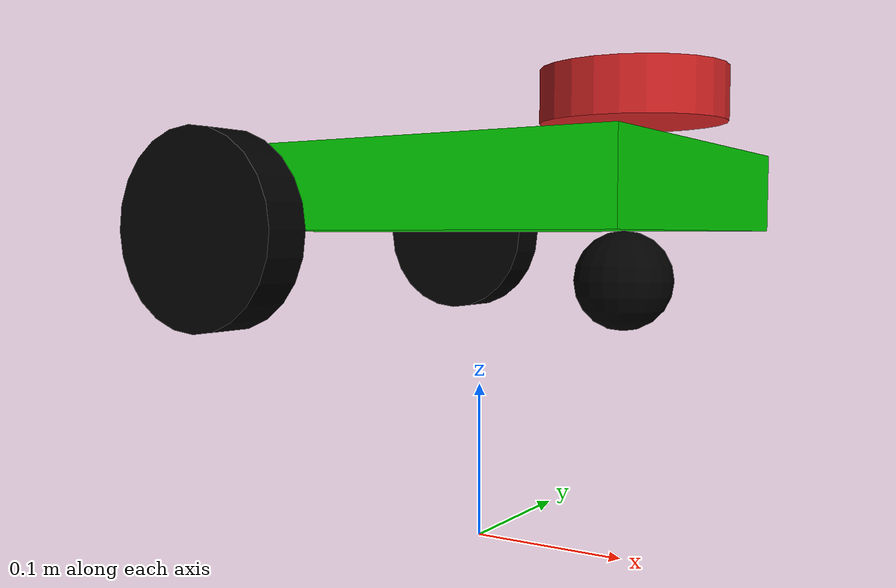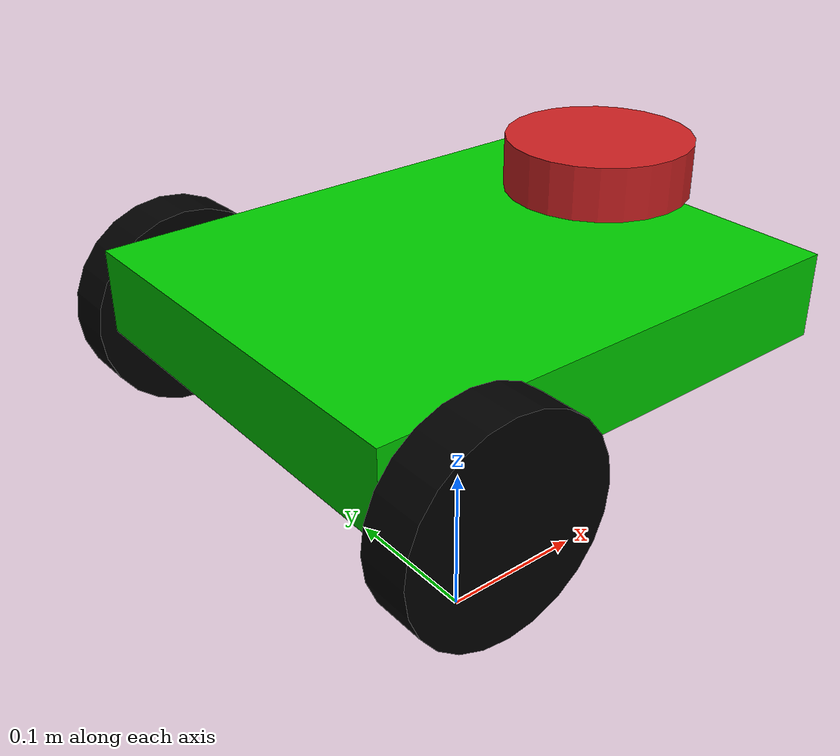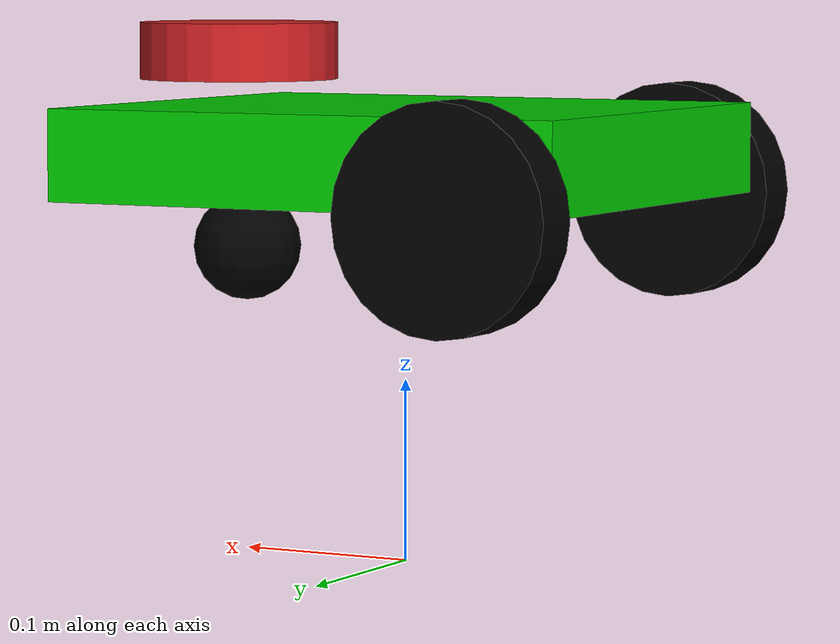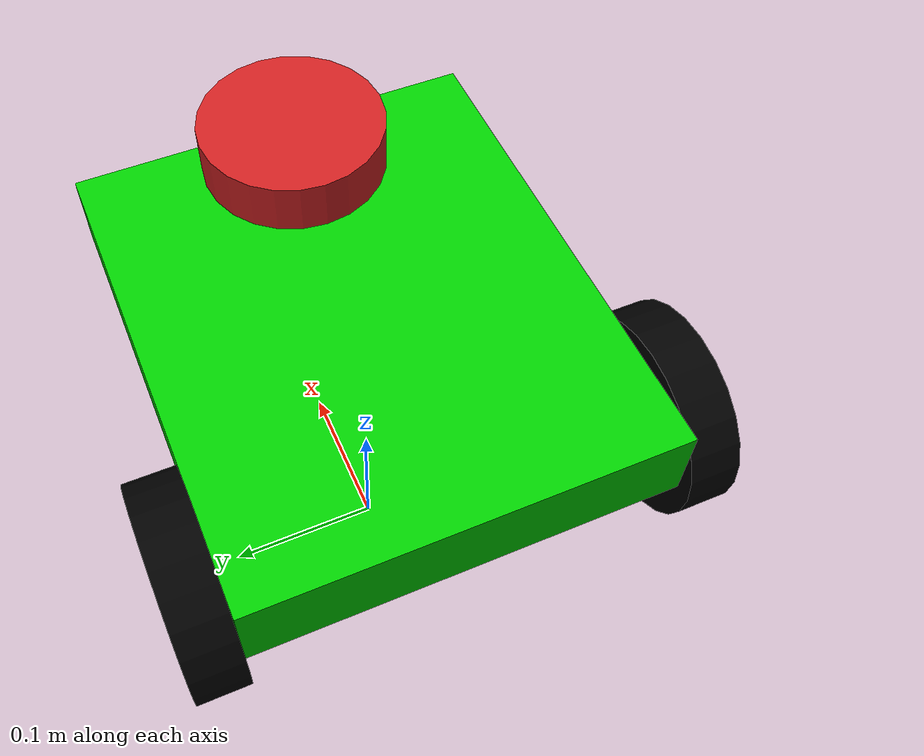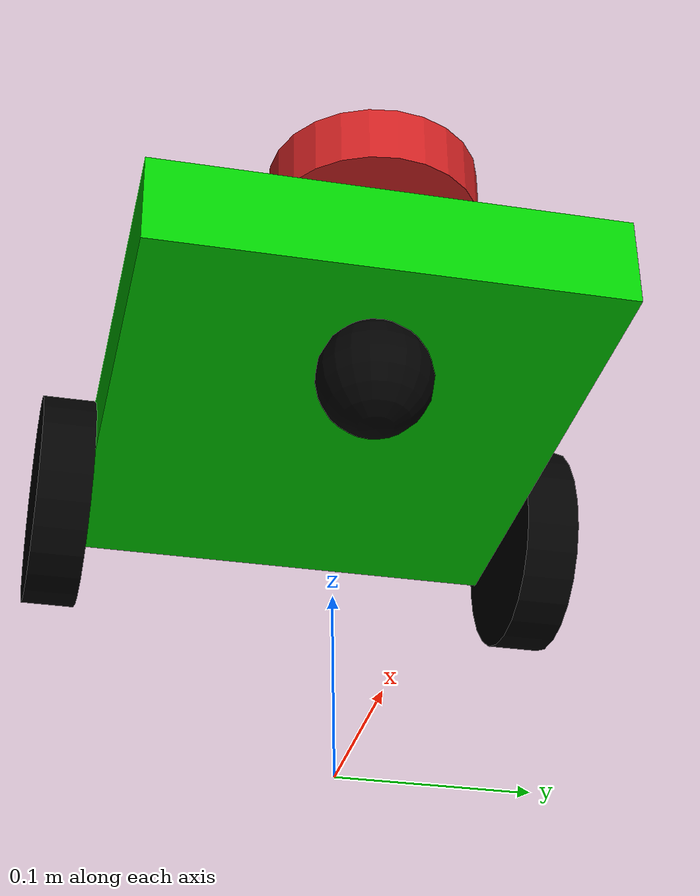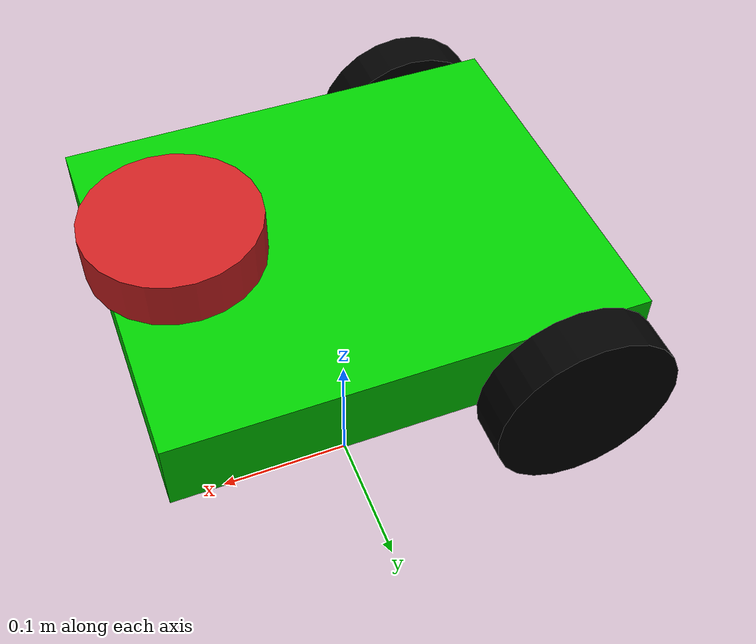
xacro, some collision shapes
<?xml version="1.0"?>
<robot name="my_diff_wheeled_robot" xmlns:xacro="http://www.ros.org/wiki/xacro">
    <xacro:property name="wheel_radius" value="0.06"/>
    <xacro:property name="wheel_length" value="0.03"/>
    <xacro:property name="base_width" value="0.25"/>
    <xacro:property name="base_depth" value="0.3"/>
    <xacro:property name="base_height" value="0.05"/>
    <xacro:property name="front_wheel_radius" value="0.03"/>

    <xacro:macro name="box_inertial" params="mass width height depth">
        <inertial>
        <mass value="${mass}"/>
        <inertia ixx="${mass / 12 * (height*height + depth*depth)}"
            iyy="${mass / 12 * (width*width + depth*depth)}"
            izz="${mass / 12 * (width*width + height*height)}"
            ixy="0" iyz="0" ixz="0"/>
        </inertial>
    </xacro:macro>

    <xacro:macro name="cylinder_inertial" params="mass radius length">
        <inertial>
        <mass value="${mass}"/>
        <inertia ixx="${mass*(3*radius*radius+length*length)/12}"
            iyy="${mass*(3*radius*radius+length*length)/12}"
            izz="${mass*radius*radius/2}"
            ixy="0" iyz="0" ixz="0"/>
        </inertial>
    </xacro:macro>

    <xacro:macro name="sphere_inertial" params="mass radius">
        <inertial>
        <mass value="${mass}"/>
        <inertia ixx="${mass*(2*radius*radius)/5}"
            iyy="${mass*(2*radius*radius)/5}"
            izz="${mass*(2*radius*radius)/5}"
            ixy="0" iyz="0" ixz="0"/>
        </inertial>
    </xacro:macro>

    <xacro:include filename="$(find au_422_robot_description)/urdf/materials.xacro"/>
    <xacro:include filename="$(find au_422_robot_description)/urdf/robot_for_navigation.gazebo"/>

    <!-- *****************BASE LINK************************* -->
    <link name="base_footprint"/>

    <link name="base_link">
        <visual>
            <origin xyz="0 0 ${base_height/2}"/>
            <geometry>
                <box size="${base_depth} ${base_width} ${base_height}"/>
            </geometry>
            <material name="green"/>
        </visual>
        <collision>
            <origin xyz="0 0 ${base_height/2}"/>
            <geometry>
                <box size="${base_depth} ${base_width} ${base_height}"/>
            </geometry>
        </collision>
        <xacro:box_inertial mass="1" width="${base_width}" height="${base_height}" depth="${base_depth}"/>
    </link>

    <joint name="base_footprint_to_base_link" type="fixed">
        <parent link="base_footprint"/>
        <child link="base_link"/>
        <origin xyz="0 0 0.2"/>
    </joint>

    <!-- *****************REAR WHEELS************************* -->
    <xacro:macro name="wheel" params="prefix reflect">
        <link name="${prefix}_wheel">
            <visual>
                <origin rpy="${pi/2} 0 0"/>
                <geometry>
                    <cylinder radius="${wheel_radius}" length="${wheel_length}"/>
                </geometry>
                <material name="black"/>
            </visual>
            <collision>
                <origin rpy="${pi/2} 0 0"/>
                <geometry>
                    <cylinder radius="${wheel_radius}" length="${wheel_length}"/>
                </geometry>
            </collision>
            <xacro:cylinder_inertial mass="0.2" radius="${wheel_radius}" length="0.03"/>
        </link>

        <joint name="base_to_${prefix}_wheel" type="fixed">
            <parent link="base_link"/>
            <child link="${prefix}_wheel"/>
            <origin xyz="${-1*base_depth/3} ${reflect*(base_width/2+wheel_length/2)} 0"/>
        </joint>
    </xacro:macro>
    <xacro:wheel prefix="left" reflect="1" />
    <xacro:wheel prefix="right" reflect="-1" />

    <!-- *****************FRONT WHEEL************************* -->
    <link name="front_wheel">
        <visual>
        <geometry>
            <sphere radius="${front_wheel_radius}"/>
        </geometry>
        <material name="black"/>
        </visual>
        <collision>
            <geometry>
                <sphere radius="${front_wheel_radius}"/>
            </geometry>
        </collision>
        <xacro:sphere_inertial mass="0.1" radius="${front_wheel_radius}"/>
    </link>

    <joint name="base_link_to_front_wheel" type="fixed">
        <parent link="base_link"/>
        <child link="front_wheel"/>
        <origin xyz="${base_depth/2-0.05} 0 ${-front_wheel_radius}"/>
    </joint>

    <!-- *****************LASER************************ -->
    <link name="lidar_link">
        <visual>
            <geometry>
                <mesh filename="package://au_422_robot_description/meshes/lds.dae" scale="0.001 0.001 0.001"/>
            </geometry>
            <material name="red"/>
        </visual>
        <collision>
            <geometry>
                <cylinder length="0.0315" radius="0.055"/>
            </geometry>
            <origin xyz="0.015 0 -0.0065"/>
        </collision>
        <inertial>
            <mass value="0.114" />
            <inertia ixx="1e-3" ixy="0" ixz="0" iyy="1e-3" iyz="0" izz="1e-3" />
        </inertial>
    </link>
    <joint name="base_link_to_laser" type="fixed">
        <parent link="base_link"/>
        <child link="lidar_link"/>
        <origin xyz="${base_depth/2-0.06} 0 ${base_height+0.035}"/>
    </joint>
</robot>

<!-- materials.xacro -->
<robot>
    <material name="black">
        <color rgba="0.0 0.0 0.0 1.0"/>
    </material>

    <material name="blue">
        <color rgba="0.203125 0.23828125 0.28515625 1.0"/>
    </material>

    <material name="green">
        <color rgba="0.0 0.8 0.0 1.0"/>
    </material>

    <material name="grey">
        <color rgba="0.2 0.2 0.2 1.0"/>
    </material>

    <material name="orange">
        <color rgba="1.0 0.423529411765 0.0392156862745 1.0"/>
    </material>

    <material name="brown">
        <color rgba="0.870588235294 0.811764705882 0.764705882353 1.0"/>
    </material>

    <material name="red">
        <color rgba="0.80078125 0.12890625 0.1328125 1.0"/>
    </material>

    <material name="white">
        <color rgba="1.0 1.0 1.0 1.0"/>
    </material>
</robot>
